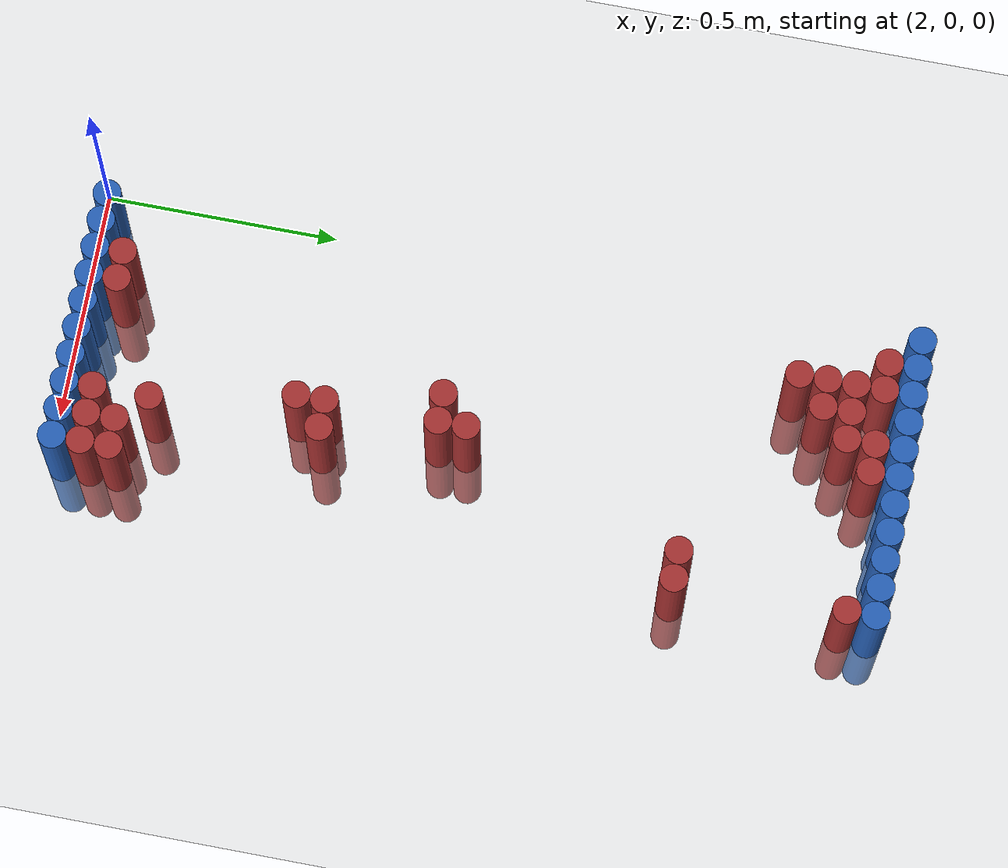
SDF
<sdf version="1.6">
 <world name="default">
  <model name="ground_plane">
   <static>1</static>
   <link name="link">
    <collision name="collision">
     <geometry><plane><normal>0 0 1</normal><size>100 100</size></plane></geometry>
     <surface><friction><ode><mu>100</mu><mu2>50</mu2></ode></friction></surface>
    </collision>
    <visual name="visual">
     <cast_shadows>0</cast_shadows>
     <geometry><plane><normal>0 0 1</normal><size>100 100</size></plane></geometry>
     <material>
      <script><uri>file://media/materials/scripts/gazebo.material</uri><name>Gazebo/Grey</name></script>
     </material>
    </visual>
   </link>
  </model>
  <model name="unit_cylinder_95">
   <static>1</static>
   <pose>2.070000 1.770000 0.000000 0.000000 0.000000 0.000000</pose>
   <link name="link">
    <inertial>
     <mass>1</mass>
     <inertia><ixx>0.145833</ixx><ixy>0</ixy><ixz>0</ixz><iyy>0.145833</iyy><iyz>0</iyz><izz>0.125</izz></inertia>
    </inertial>
    <collision name="collision">
     <geometry><cylinder><radius>0.030000</radius><length>0.5</length></cylinder></geometry>
    </collision>
    <visual name="visual">
     <geometry><cylinder><radius>0.030000</radius><length>0.5</length></cylinder></geometry>
     <material>
      <ambient>0.152000 0.379000 0.720000 1</ambient>
      <diffuse>0.152000 0.379000 0.720000 1</diffuse>
     </material>
     <material>
      <script><name>Gazebo/Grey</name><uri>file://media/materials/scripts/gazebo.material</uri></script>
     </material>
    </visual>
   </link>
  </model>
  <model name="unit_cylinder_96">
   <static>1</static>
   <pose>2.130000 1.770000 0.000000 0.000000 0.000000 0.000000</pose>
   <link name="link">
    <inertial>
     <mass>1</mass>
     <inertia><ixx>0.145833</ixx><ixy>0</ixy><ixz>0</ixz><iyy>0.145833</iyy><iyz>0</iyz><izz>0.125</izz></inertia>
    </inertial>
    <collision name="collision">
     <geometry><cylinder><radius>0.030000</radius><length>0.5</length></cylinder></geometry>
    </collision>
    <visual name="visual">
     <geometry><cylinder><radius>0.030000</radius><length>0.5</length></cylinder></geometry>
     <material>
      <ambient>0.152000 0.379000 0.720000 1</ambient>
      <diffuse>0.152000 0.379000 0.720000 1</diffuse>
     </material>
     <material>
      <script><name>Gazebo/Grey</name><uri>file://media/materials/scripts/gazebo.material</uri></script>
     </material>
    </visual>
   </link>
  </model>
  <model name="unit_cylinder_97">
   <static>1</static>
   <pose>2.190000 1.770000 0.000000 0.000000 0.000000 0.000000</pose>
   <link name="link">
    <inertial>
     <mass>1</mass>
     <inertia><ixx>0.145833</ixx><ixy>0</ixy><ixz>0</ixz><iyy>0.145833</iyy><iyz>0</iyz><izz>0.125</izz></inertia>
    </inertial>
    <collision name="collision">
     <geometry><cylinder><radius>0.030000</radius><length>0.5</length></cylinder></geometry>
    </collision>
    <visual name="visual">
     <geometry><cylinder><radius>0.030000</radius><length>0.5</length></cylinder></geometry>
     <material>
      <ambient>0.152000 0.379000 0.720000 1</ambient>
      <diffuse>0.152000 0.379000 0.720000 1</diffuse>
     </material>
     <material>
      <script><name>Gazebo/Grey</name><uri>file://media/materials/scripts/gazebo.material</uri></script>
     </material>
    </visual>
   </link>
  </model>
  <model name="unit_cylinder_98">
   <static>1</static>
   <pose>2.250000 1.770000 0.000000 0.000000 0.000000 0.000000</pose>
   <link name="link">
    <inertial>
     <mass>1</mass>
     <inertia><ixx>0.145833</ixx><ixy>0</ixy><ixz>0</ixz><iyy>0.145833</iyy><iyz>0</iyz><izz>0.125</izz></inertia>
    </inertial>
    <collision name="collision">
     <geometry><cylinder><radius>0.030000</radius><length>0.5</length></cylinder></geometry>
    </collision>
    <visual name="visual">
     <geometry><cylinder><radius>0.030000</radius><length>0.5</length></cylinder></geometry>
     <material>
      <ambient>0.152000 0.379000 0.720000 1</ambient>
      <diffuse>0.152000 0.379000 0.720000 1</diffuse>
     </material>
     <material>
      <script><name>Gazebo/Grey</name><uri>file://media/materials/scripts/gazebo.material</uri></script>
     </material>
    </visual>
   </link>
  </model>
  <model name="unit_cylinder_99">
   <static>1</static>
   <pose>2.310000 1.770000 0.000000 0.000000 0.000000 0.000000</pose>
   <link name="link">
    <inertial>
     <mass>1</mass>
     <inertia><ixx>0.145833</ixx><ixy>0</ixy><ixz>0</ixz><iyy>0.145833</iyy><iyz>0</iyz><izz>0.125</izz></inertia>
    </inertial>
    <collision name="collision">
     <geometry><cylinder><radius>0.030000</radius><length>0.5</length></cylinder></geometry>
    </collision>
    <visual name="visual">
     <geometry><cylinder><radius>0.030000</radius><length>0.5</length></cylinder></geometry>
     <material>
      <ambient>0.152000 0.379000 0.720000 1</ambient>
      <diffuse>0.152000 0.379000 0.720000 1</diffuse>
     </material>
     <material>
      <script><name>Gazebo/Grey</name><uri>file://media/materials/scripts/gazebo.material</uri></script>
     </material>
    </visual>
   </link>
  </model>
  <model name="unit_cylinder_100">
   <static>1</static>
   <pose>2.370000 1.770000 0.000000 0.000000 0.000000 0.000000</pose>
   <link name="link">
    <inertial>
     <mass>1</mass>
     <inertia><ixx>0.145833</ixx><ixy>0</ixy><ixz>0</ixz><iyy>0.145833</iyy><iyz>0</iyz><izz>0.125</izz></inertia>
    </inertial>
    <collision name="collision">
     <geometry><cylinder><radius>0.030000</radius><length>0.5</length></cylinder></geometry>
    </collision>
    <visual name="visual">
     <geometry><cylinder><radius>0.030000</radius><length>0.5</length></cylinder></geometry>
     <material>
      <ambient>0.152000 0.379000 0.720000 1</ambient>
      <diffuse>0.152000 0.379000 0.720000 1</diffuse>
     </material>
     <material>
      <script><name>Gazebo/Grey</name><uri>file://media/materials/scripts/gazebo.material</uri></script>
     </material>
    </visual>
   </link>
  </model>
  <model name="unit_cylinder_101">
   <static>1</static>
   <pose>2.430000 1.770000 0.000000 0.000000 0.000000 0.000000</pose>
   <link name="link">
    <inertial>
     <mass>1</mass>
     <inertia><ixx>0.145833</ixx><ixy>0</ixy><ixz>0</ixz><iyy>0.145833</iyy><iyz>0</iyz><izz>0.125</izz></inertia>
    </inertial>
    <collision name="collision">
     <geometry><cylinder><radius>0.030000</radius><length>0.5</length></cylinder></geometry>
    </collision>
    <visual name="visual">
     <geometry><cylinder><radius>0.030000</radius><length>0.5</length></cylinder></geometry>
     <material>
      <ambient>0.152000 0.379000 0.720000 1</ambient>
      <diffuse>0.152000 0.379000 0.720000 1</diffuse>
     </material>
     <material>
      <script><name>Gazebo/Grey</name><uri>file://media/materials/scripts/gazebo.material</uri></script>
     </material>
    </visual>
   </link>
  </model>
  <model name="unit_cylinder_102">
   <static>1</static>
   <pose>2.490000 1.770000 0.000000 0.000000 0.000000 0.000000</pose>
   <link name="link">
    <inertial>
     <mass>1</mass>
     <inertia><ixx>0.145833</ixx><ixy>0</ixy><ixz>0</ixz><iyy>0.145833</iyy><iyz>0</iyz><izz>0.125</izz></inertia>
    </inertial>
    <collision name="collision">
     <geometry><cylinder><radius>0.030000</radius><length>0.5</length></cylinder></geometry>
    </collision>
    <visual name="visual">
     <geometry><cylinder><radius>0.030000</radius><length>0.5</length></cylinder></geometry>
     <material>
      <ambient>0.152000 0.379000 0.720000 1</ambient>
      <diffuse>0.152000 0.379000 0.720000 1</diffuse>
     </material>
     <material>
      <script><name>Gazebo/Grey</name><uri>file://media/materials/scripts/gazebo.material</uri></script>
     </material>
    </visual>
   </link>
  </model>
  <model name="unit_cylinder_103">
   <static>1</static>
   <pose>2.550000 1.770000 0.000000 0.000000 0.000000 0.000000</pose>
   <link name="link">
    <inertial>
     <mass>1</mass>
     <inertia><ixx>0.145833</ixx><ixy>0</ixy><ixz>0</ixz><iyy>0.145833</iyy><iyz>0</iyz><izz>0.125</izz></inertia>
    </inertial>
    <collision name="collision">
     <geometry><cylinder><radius>0.030000</radius><length>0.5</length></cylinder></geometry>
    </collision>
    <visual name="visual">
     <geometry><cylinder><radius>0.030000</radius><length>0.5</length></cylinder></geometry>
     <material>
      <ambient>0.152000 0.379000 0.720000 1</ambient>
      <diffuse>0.152000 0.379000 0.720000 1</diffuse>
     </material>
     <material>
      <script><name>Gazebo/Grey</name><uri>file://media/materials/scripts/gazebo.material</uri></script>
     </material>
    </visual>
   </link>
  </model>
  <model name="unit_cylinder_104">
   <static>1</static>
   <pose>2.610000 1.770000 0.000000 0.000000 0.000000 0.000000</pose>
   <link name="link">
    <inertial>
     <mass>1</mass>
     <inertia><ixx>0.145833</ixx><ixy>0</ixy><ixz>0</ixz><iyy>0.145833</iyy><iyz>0</iyz><izz>0.125</izz></inertia>
    </inertial>
    <collision name="collision">
     <geometry><cylinder><radius>0.030000</radius><length>0.5</length></cylinder></geometry>
    </collision>
    <visual name="visual">
     <geometry><cylinder><radius>0.030000</radius><length>0.5</length></cylinder></geometry>
     <material>
      <ambient>0.152000 0.379000 0.720000 1</ambient>
      <diffuse>0.152000 0.379000 0.720000 1</diffuse>
     </material>
     <material>
      <script><name>Gazebo/Grey</name><uri>file://media/materials/scripts/gazebo.material</uri></script>
     </material>
    </visual>
   </link>
  </model>
  <model name="unit_cylinder_105">
   <static>1</static>
   <pose>2.670000 1.770000 0.000000 0.000000 0.000000 0.000000</pose>
   <link name="link">
    <inertial>
     <mass>1</mass>
     <inertia><ixx>0.145833</ixx><ixy>0</ixy><ixz>0</ixz><iyy>0.145833</iyy><iyz>0</iyz><izz>0.125</izz></inertia>
    </inertial>
    <collision name="collision">
     <geometry><cylinder><radius>0.030000</radius><length>0.5</length></cylinder></geometry>
    </collision>
    <visual name="visual">
     <geometry><cylinder><radius>0.030000</radius><length>0.5</length></cylinder></geometry>
     <material>
      <ambient>0.152000 0.379000 0.720000 1</ambient>
      <diffuse>0.152000 0.379000 0.720000 1</diffuse>
     </material>
     <material>
      <script><name>Gazebo/Grey</name><uri>file://media/materials/scripts/gazebo.material</uri></script>
     </material>
    </visual>
   </link>
  </model>
  <model name="unit_cylinder_125">
   <static>1</static>
   <pose>2.130000 1.710000 0.000000 0.000000 0.000000 0.000000</pose>
   <link name="link">
    <inertial>
     <mass>1</mass>
     <inertia><ixx>0.145833</ixx><ixy>0</ixy><ixz>0</ixz><iyy>0.145833</iyy><iyz>0</iyz><izz>0.125</izz></inertia>
    </inertial>
    <collision name="collision">
     <geometry><cylinder><radius>0.030000</radius><length>0.5</length></cylinder></geometry>
    </collision>
    <visual name="visual">
     <geometry><cylinder><radius>0.030000</radius><length>0.5</length></cylinder></geometry>
     <material>
      <ambient>0.648000 0.192000 0.192000 1</ambient>
      <diffuse>0.648000 0.192000 0.192000 1</diffuse>
     </material>
     <material>
      <script><name>Gazebo/Grey</name><uri>file://media/materials/scripts/gazebo.material</uri></script>
     </material>
    </visual>
   </link>
  </model>
  <model name="unit_cylinder_126">
   <static>1</static>
   <pose>2.190000 1.710000 0.000000 0.000000 0.000000 0.000000</pose>
   <link name="link">
    <inertial>
     <mass>1</mass>
     <inertia><ixx>0.145833</ixx><ixy>0</ixy><ixz>0</ixz><iyy>0.145833</iyy><iyz>0</iyz><izz>0.125</izz></inertia>
    </inertial>
    <collision name="collision">
     <geometry><cylinder><radius>0.030000</radius><length>0.5</length></cylinder></geometry>
    </collision>
    <visual name="visual">
     <geometry><cylinder><radius>0.030000</radius><length>0.5</length></cylinder></geometry>
     <material>
      <ambient>0.648000 0.192000 0.192000 1</ambient>
      <diffuse>0.648000 0.192000 0.192000 1</diffuse>
     </material>
     <material>
      <script><name>Gazebo/Grey</name><uri>file://media/materials/scripts/gazebo.material</uri></script>
     </material>
    </visual>
   </link>
  </model>
  <model name="unit_cylinder_127">
   <static>1</static>
   <pose>2.310000 1.710000 0.000000 0.000000 0.000000 0.000000</pose>
   <link name="link">
    <inertial>
     <mass>1</mass>
     <inertia><ixx>0.145833</ixx><ixy>0</ixy><ixz>0</ixz><iyy>0.145833</iyy><iyz>0</iyz><izz>0.125</izz></inertia>
    </inertial>
    <collision name="collision">
     <geometry><cylinder><radius>0.030000</radius><length>0.5</length></cylinder></geometry>
    </collision>
    <visual name="visual">
     <geometry><cylinder><radius>0.030000</radius><length>0.5</length></cylinder></geometry>
     <material>
      <ambient>0.648000 0.192000 0.192000 1</ambient>
      <diffuse>0.648000 0.192000 0.192000 1</diffuse>
     </material>
     <material>
      <script><name>Gazebo/Grey</name><uri>file://media/materials/scripts/gazebo.material</uri></script>
     </material>
    </visual>
   </link>
  </model>
  <model name="unit_cylinder_128">
   <static>1</static>
   <pose>2.370000 1.710000 0.000000 0.000000 0.000000 0.000000</pose>
   <link name="link">
    <inertial>
     <mass>1</mass>
     <inertia><ixx>0.145833</ixx><ixy>0</ixy><ixz>0</ixz><iyy>0.145833</iyy><iyz>0</iyz><izz>0.125</izz></inertia>
    </inertial>
    <collision name="collision">
     <geometry><cylinder><radius>0.030000</radius><length>0.5</length></cylinder></geometry>
    </collision>
    <visual name="visual">
     <geometry><cylinder><radius>0.030000</radius><length>0.5</length></cylinder></geometry>
     <material>
      <ambient>0.648000 0.192000 0.192000 1</ambient>
      <diffuse>0.648000 0.192000 0.192000 1</diffuse>
     </material>
     <material>
      <script><name>Gazebo/Grey</name><uri>file://media/materials/scripts/gazebo.material</uri></script>
     </material>
    </visual>
   </link>
  </model>
  <model name="unit_cylinder_129">
   <static>1</static>
   <pose>2.670000 1.710000 0.000000 0.000000 0.000000 0.000000</pose>
   <link name="link">
    <inertial>
     <mass>1</mass>
     <inertia><ixx>0.145833</ixx><ixy>0</ixy><ixz>0</ixz><iyy>0.145833</iyy><iyz>0</iyz><izz>0.125</izz></inertia>
    </inertial>
    <collision name="collision">
     <geometry><cylinder><radius>0.030000</radius><length>0.5</length></cylinder></geometry>
    </collision>
    <visual name="visual">
     <geometry><cylinder><radius>0.030000</radius><length>0.5</length></cylinder></geometry>
     <material>
      <ambient>0.648000 0.192000 0.192000 1</ambient>
      <diffuse>0.648000 0.192000 0.192000 1</diffuse>
     </material>
     <material>
      <script><name>Gazebo/Grey</name><uri>file://media/materials/scripts/gazebo.material</uri></script>
     </material>
    </visual>
   </link>
  </model>
  <model name="unit_cylinder_138">
   <static>1</static>
   <pose>2.190000 1.650000 0.000000 0.000000 0.000000 0.000000</pose>
   <link name="link">
    <inertial>
     <mass>1</mass>
     <inertia><ixx>0.145833</ixx><ixy>0</ixy><ixz>0</ixz><iyy>0.145833</iyy><iyz>0</iyz><izz>0.125</izz></inertia>
    </inertial>
    <collision name="collision">
     <geometry><cylinder><radius>0.030000</radius><length>0.5</length></cylinder></geometry>
    </collision>
    <visual name="visual">
     <geometry><cylinder><radius>0.030000</radius><length>0.5</length></cylinder></geometry>
     <material>
      <ambient>0.648000 0.192000 0.192000 1</ambient>
      <diffuse>0.648000 0.192000 0.192000 1</diffuse>
     </material>
     <material>
      <script><name>Gazebo/Grey</name><uri>file://media/materials/scripts/gazebo.material</uri></script>
     </material>
    </visual>
   </link>
  </model>
  <model name="unit_cylinder_139">
   <static>1</static>
   <pose>2.250000 1.650000 0.000000 0.000000 0.000000 0.000000</pose>
   <link name="link">
    <inertial>
     <mass>1</mass>
     <inertia><ixx>0.145833</ixx><ixy>0</ixy><ixz>0</ixz><iyy>0.145833</iyy><iyz>0</iyz><izz>0.125</izz></inertia>
    </inertial>
    <collision name="collision">
     <geometry><cylinder><radius>0.030000</radius><length>0.5</length></cylinder></geometry>
    </collision>
    <visual name="visual">
     <geometry><cylinder><radius>0.030000</radius><length>0.5</length></cylinder></geometry>
     <material>
      <ambient>0.648000 0.192000 0.192000 1</ambient>
      <diffuse>0.648000 0.192000 0.192000 1</diffuse>
     </material>
     <material>
      <script><name>Gazebo/Grey</name><uri>file://media/materials/scripts/gazebo.material</uri></script>
     </material>
    </visual>
   </link>
  </model>
  <model name="unit_cylinder_140">
   <static>1</static>
   <pose>2.310000 1.650000 0.000000 0.000000 0.000000 0.000000</pose>
   <link name="link">
    <inertial>
     <mass>1</mass>
     <inertia><ixx>0.145833</ixx><ixy>0</ixy><ixz>0</ixz><iyy>0.145833</iyy><iyz>0</iyz><izz>0.125</izz></inertia>
    </inertial>
    <collision name="collision">
     <geometry><cylinder><radius>0.030000</radius><length>0.5</length></cylinder></geometry>
    </collision>
    <visual name="visual">
     <geometry><cylinder><radius>0.030000</radius><length>0.5</length></cylinder></geometry>
     <material>
      <ambient>0.648000 0.192000 0.192000 1</ambient>
      <diffuse>0.648000 0.192000 0.192000 1</diffuse>
     </material>
     <material>
      <script><name>Gazebo/Grey</name><uri>file://media/materials/scripts/gazebo.material</uri></script>
     </material>
    </visual>
   </link>
  </model>
  <model name="unit_cylinder_146">
   <static>1</static>
   <pose>2.190000 1.590000 0.000000 0.000000 0.000000 0.000000</pose>
   <link name="link">
    <inertial>
     <mass>1</mass>
     <inertia><ixx>0.145833</ixx><ixy>0</ixy><ixz>0</ixz><iyy>0.145833</iyy><iyz>0</iyz><izz>0.125</izz></inertia>
    </inertial>
    <collision name="collision">
     <geometry><cylinder><radius>0.030000</radius><length>0.5</length></cylinder></geometry>
    </collision>
    <visual name="visual">
     <geometry><cylinder><radius>0.030000</radius><length>0.5</length></cylinder></geometry>
     <material>
      <ambient>0.648000 0.192000 0.192000 1</ambient>
      <diffuse>0.648000 0.192000 0.192000 1</diffuse>
     </material>
     <material>
      <script><name>Gazebo/Grey</name><uri>file://media/materials/scripts/gazebo.material</uri></script>
     </material>
    </visual>
   </link>
  </model>
  <model name="unit_cylinder_147">
   <static>1</static>
   <pose>2.250000 1.590000 0.000000 0.000000 0.000000 0.000000</pose>
   <link name="link">
    <inertial>
     <mass>1</mass>
     <inertia><ixx>0.145833</ixx><ixy>0</ixy><ixz>0</ixz><iyy>0.145833</iyy><iyz>0</iyz><izz>0.125</izz></inertia>
    </inertial>
    <collision name="collision">
     <geometry><cylinder><radius>0.030000</radius><length>0.5</length></cylinder></geometry>
    </collision>
    <visual name="visual">
     <geometry><cylinder><radius>0.030000</radius><length>0.5</length></cylinder></geometry>
     <material>
      <ambient>0.648000 0.192000 0.192000 1</ambient>
      <diffuse>0.648000 0.192000 0.192000 1</diffuse>
     </material>
     <material>
      <script><name>Gazebo/Grey</name><uri>file://media/materials/scripts/gazebo.material</uri></script>
     </material>
    </visual>
   </link>
  </model>
  <model name="unit_cylinder_148">
   <static>1</static>
   <pose>2.190000 1.530000 0.000000 0.000000 0.000000 0.000000</pose>
   <link name="link">
    <inertial>
     <mass>1</mass>
     <inertia><ixx>0.145833</ixx><ixy>0</ixy><ixz>0</ixz><iyy>0.145833</iyy><iyz>0</iyz><izz>0.125</izz></inertia>
    </inertial>
    <collision name="collision">
     <geometry><cylinder><radius>0.030000</radius><length>0.5</length></cylinder></geometry>
    </collision>
    <visual name="visual">
     <geometry><cylinder><radius>0.030000</radius><length>0.5</length></cylinder></geometry>
     <material>
      <ambient>0.648000 0.192000 0.192000 1</ambient>
      <diffuse>0.648000 0.192000 0.192000 1</diffuse>
     </material>
     <material>
      <script><name>Gazebo/Grey</name><uri>file://media/materials/scripts/gazebo.material</uri></script>
     </material>
    </visual>
   </link>
  </model>
  <model name="unit_cylinder_155">
   <static>1</static>
   <pose>2.610000 1.350000 0.000000 0.000000 0.000000 0.000000</pose>
   <link name="link">
    <inertial>
     <mass>1</mass>
     <inertia><ixx>0.145833</ixx><ixy>0</ixy><ixz>0</ixz><iyy>0.145833</iyy><iyz>0</iyz><izz>0.125</izz></inertia>
    </inertial>
    <collision name="collision">
     <geometry><cylinder><radius>0.030000</radius><length>0.5</length></cylinder></geometry>
    </collision>
    <visual name="visual">
     <geometry><cylinder><radius>0.030000</radius><length>0.5</length></cylinder></geometry>
     <material>
      <ambient>0.648000 0.192000 0.192000 1</ambient>
      <diffuse>0.648000 0.192000 0.192000 1</diffuse>
     </material>
     <material>
      <script><name>Gazebo/Grey</name><uri>file://media/materials/scripts/gazebo.material</uri></script>
     </material>
    </visual>
   </link>
  </model>
  <model name="unit_cylinder_156">
   <static>1</static>
   <pose>2.670000 1.350000 0.000000 0.000000 0.000000 0.000000</pose>
   <link name="link">
    <inertial>
     <mass>1</mass>
     <inertia><ixx>0.145833</ixx><ixy>0</ixy><ixz>0</ixz><iyy>0.145833</iyy><iyz>0</iyz><izz>0.125</izz></inertia>
    </inertial>
    <collision name="collision">
     <geometry><cylinder><radius>0.030000</radius><length>0.5</length></cylinder></geometry>
    </collision>
    <visual name="visual">
     <geometry><cylinder><radius>0.030000</radius><length>0.5</length></cylinder></geometry>
     <material>
      <ambient>0.648000 0.192000 0.192000 1</ambient>
      <diffuse>0.648000 0.192000 0.192000 1</diffuse>
     </material>
     <material>
      <script><name>Gazebo/Grey</name><uri>file://media/materials/scripts/gazebo.material</uri></script>
     </material>
    </visual>
   </link>
  </model>
  <model name="unit_cylinder_175">
   <static>1</static>
   <pose>2.430000 0.870000 0.000000 0.000000 0.000000 0.000000</pose>
   <link name="link">
    <inertial>
     <mass>1</mass>
     <inertia><ixx>0.145833</ixx><ixy>0</ixy><ixz>0</ixz><iyy>0.145833</iyy><iyz>0</iyz><izz>0.125</izz></inertia>
    </inertial>
    <collision name="collision">
     <geometry><cylinder><radius>0.030000</radius><length>0.5</length></cylinder></geometry>
    </collision>
    <visual name="visual">
     <geometry><cylinder><radius>0.030000</radius><length>0.5</length></cylinder></geometry>
     <material>
      <ambient>0.648000 0.192000 0.192000 1</ambient>
      <diffuse>0.648000 0.192000 0.192000 1</diffuse>
     </material>
     <material>
      <script><name>Gazebo/Grey</name><uri>file://media/materials/scripts/gazebo.material</uri></script>
     </material>
    </visual>
   </link>
  </model>
  <model name="unit_cylinder_178">
   <static>1</static>
   <pose>2.370000 0.810000 0.000000 0.000000 0.000000 0.000000</pose>
   <link name="link">
    <inertial>
     <mass>1</mass>
     <inertia><ixx>0.145833</ixx><ixy>0</ixy><ixz>0</ixz><iyy>0.145833</iyy><iyz>0</iyz><izz>0.125</izz></inertia>
    </inertial>
    <collision name="collision">
     <geometry><cylinder><radius>0.030000</radius><length>0.5</length></cylinder></geometry>
    </collision>
    <visual name="visual">
     <geometry><cylinder><radius>0.030000</radius><length>0.5</length></cylinder></geometry>
     <material>
      <ambient>0.648000 0.192000 0.192000 1</ambient>
      <diffuse>0.648000 0.192000 0.192000 1</diffuse>
     </material>
     <material>
      <script><name>Gazebo/Grey</name><uri>file://media/materials/scripts/gazebo.material</uri></script>
     </material>
    </visual>
   </link>
  </model>
  <model name="unit_cylinder_179">
   <static>1</static>
   <pose>2.430000 0.810000 0.000000 0.000000 0.000000 0.000000</pose>
   <link name="link">
    <inertial>
     <mass>1</mass>
     <inertia><ixx>0.145833</ixx><ixy>0</ixy><ixz>0</ixz><iyy>0.145833</iyy><iyz>0</iyz><izz>0.125</izz></inertia>
    </inertial>
    <collision name="collision">
     <geometry><cylinder><radius>0.030000</radius><length>0.5</length></cylinder></geometry>
    </collision>
    <visual name="visual">
     <geometry><cylinder><radius>0.030000</radius><length>0.5</length></cylinder></geometry>
     <material>
      <ambient>0.648000 0.192000 0.192000 1</ambient>
      <diffuse>0.648000 0.192000 0.192000 1</diffuse>
     </material>
     <material>
      <script><name>Gazebo/Grey</name><uri>file://media/materials/scripts/gazebo.material</uri></script>
     </material>
    </visual>
   </link>
  </model>
  <model name="unit_cylinder_181">
   <static>1</static>
   <pose>2.430000 0.570000 0.000000 0.000000 0.000000 0.000000</pose>
   <link name="link">
    <inertial>
     <mass>1</mass>
     <inertia><ixx>0.145833</ixx><ixy>0</ixy><ixz>0</ixz><iyy>0.145833</iyy><iyz>0</iyz><izz>0.125</izz></inertia>
    </inertial>
    <collision name="collision">
     <geometry><cylinder><radius>0.030000</radius><length>0.5</length></cylinder></geometry>
    </collision>
    <visual name="visual">
     <geometry><cylinder><radius>0.030000</radius><length>0.5</length></cylinder></geometry>
     <material>
      <ambient>0.648000 0.192000 0.192000 1</ambient>
      <diffuse>0.648000 0.192000 0.192000 1</diffuse>
     </material>
     <material>
      <script><name>Gazebo/Grey</name><uri>file://media/materials/scripts/gazebo.material</uri></script>
     </material>
    </visual>
   </link>
  </model>
  <model name="unit_cylinder_182">
   <static>1</static>
   <pose>2.490000 0.570000 0.000000 0.000000 0.000000 0.000000</pose>
   <link name="link">
    <inertial>
     <mass>1</mass>
     <inertia><ixx>0.145833</ixx><ixy>0</ixy><ixz>0</ixz><iyy>0.145833</iyy><iyz>0</iyz><izz>0.125</izz></inertia>
    </inertial>
    <collision name="collision">
     <geometry><cylinder><radius>0.030000</radius><length>0.5</length></cylinder></geometry>
    </collision>
    <visual name="visual">
     <geometry><cylinder><radius>0.030000</radius><length>0.5</length></cylinder></geometry>
     <material>
      <ambient>0.648000 0.192000 0.192000 1</ambient>
      <diffuse>0.648000 0.192000 0.192000 1</diffuse>
     </material>
     <material>
      <script><name>Gazebo/Grey</name><uri>file://media/materials/scripts/gazebo.material</uri></script>
     </material>
    </visual>
   </link>
  </model>
  <model name="unit_cylinder_183">
   <static>1</static>
   <pose>2.430000 0.510000 0.000000 0.000000 0.000000 0.000000</pose>
   <link name="link">
    <inertial>
     <mass>1</mass>
     <inertia><ixx>0.145833</ixx><ixy>0</ixy><ixz>0</ixz><iyy>0.145833</iyy><iyz>0</iyz><izz>0.125</izz></inertia>
    </inertial>
    <collision name="collision">
     <geometry><cylinder><radius>0.030000</radius><length>0.5</length></cylinder></geometry>
    </collision>
    <visual name="visual">
     <geometry><cylinder><radius>0.030000</radius><length>0.5</length></cylinder></geometry>
     <material>
      <ambient>0.648000 0.192000 0.192000 1</ambient>
      <diffuse>0.648000 0.192000 0.192000 1</diffuse>
     </material>
     <material>
      <script><name>Gazebo/Grey</name><uri>file://media/materials/scripts/gazebo.material</uri></script>
     </material>
    </visual>
   </link>
  </model>
  <model name="unit_cylinder_188">
   <static>1</static>
   <pose>2.490000 0.210000 0.000000 0.000000 0.000000 0.000000</pose>
   <link name="link">
    <inertial>
     <mass>1</mass>
     <inertia><ixx>0.145833</ixx><ixy>0</ixy><ixz>0</ixz><iyy>0.145833</iyy><iyz>0</iyz><izz>0.125</izz></inertia>
    </inertial>
    <collision name="collision">
     <geometry><cylinder><radius>0.030000</radius><length>0.5</length></cylinder></geometry>
    </collision>
    <visual name="visual">
     <geometry><cylinder><radius>0.030000</radius><length>0.5</length></cylinder></geometry>
     <material>
      <ambient>0.648000 0.192000 0.192000 1</ambient>
      <diffuse>0.648000 0.192000 0.192000 1</diffuse>
     </material>
     <material>
      <script><name>Gazebo/Grey</name><uri>file://media/materials/scripts/gazebo.material</uri></script>
     </material>
    </visual>
   </link>
  </model>
  <model name="unit_cylinder_191">
   <static>1</static>
   <pose>2.550000 0.150000 0.000000 0.000000 0.000000 0.000000</pose>
   <link name="link">
    <inertial>
     <mass>1</mass>
     <inertia><ixx>0.145833</ixx><ixy>0</ixy><ixz>0</ixz><iyy>0.145833</iyy><iyz>0</iyz><izz>0.125</izz></inertia>
    </inertial>
    <collision name="collision">
     <geometry><cylinder><radius>0.030000</radius><length>0.5</length></cylinder></geometry>
    </collision>
    <visual name="visual">
     <geometry><cylinder><radius>0.030000</radius><length>0.5</length></cylinder></geometry>
     <material>
      <ambient>0.648000 0.192000 0.192000 1</ambient>
      <diffuse>0.648000 0.192000 0.192000 1</diffuse>
     </material>
     <material>
      <script><name>Gazebo/Grey</name><uri>file://media/materials/scripts/gazebo.material</uri></script>
     </material>
    </visual>
   </link>
  </model>
  <model name="unit_cylinder_192">
   <static>1</static>
   <pose>2.610000 0.150000 0.000000 0.000000 0.000000 0.000000</pose>
   <link name="link">
    <inertial>
     <mass>1</mass>
     <inertia><ixx>0.145833</ixx><ixy>0</ixy><ixz>0</ixz><iyy>0.145833</iyy><iyz>0</iyz><izz>0.125</izz></inertia>
    </inertial>
    <collision name="collision">
     <geometry><cylinder><radius>0.030000</radius><length>0.5</length></cylinder></geometry>
    </collision>
    <visual name="visual">
     <geometry><cylinder><radius>0.030000</radius><length>0.5</length></cylinder></geometry>
     <material>
      <ambient>0.648000 0.192000 0.192000 1</ambient>
      <diffuse>0.648000 0.192000 0.192000 1</diffuse>
     </material>
     <material>
      <script><name>Gazebo/Grey</name><uri>file://media/materials/scripts/gazebo.material</uri></script>
     </material>
    </visual>
   </link>
  </model>
  <model name="unit_cylinder_197">
   <static>1</static>
   <pose>2.190000 0.090000 0.000000 0.000000 0.000000 0.000000</pose>
   <link name="link">
    <inertial>
     <mass>1</mass>
     <inertia><ixx>0.145833</ixx><ixy>0</ixy><ixz>0</ixz><iyy>0.145833</iyy><iyz>0</iyz><izz>0.125</izz></inertia>
    </inertial>
    <collision name="collision">
     <geometry><cylinder><radius>0.030000</radius><length>0.5</length></cylinder></geometry>
    </collision>
    <visual name="visual">
     <geometry><cylinder><radius>0.030000</radius><length>0.5</length></cylinder></geometry>
     <material>
      <ambient>0.648000 0.192000 0.192000 1</ambient>
      <diffuse>0.648000 0.192000 0.192000 1</diffuse>
     </material>
     <material>
      <script><name>Gazebo/Grey</name><uri>file://media/materials/scripts/gazebo.material</uri></script>
     </material>
    </visual>
   </link>
  </model>
  <model name="unit_cylinder_198">
   <static>1</static>
   <pose>2.250000 0.090000 0.000000 0.000000 0.000000 0.000000</pose>
   <link name="link">
    <inertial>
     <mass>1</mass>
     <inertia><ixx>0.145833</ixx><ixy>0</ixy><ixz>0</ixz><iyy>0.145833</iyy><iyz>0</iyz><izz>0.125</izz></inertia>
    </inertial>
    <collision name="collision">
     <geometry><cylinder><radius>0.030000</radius><length>0.5</length></cylinder></geometry>
    </collision>
    <visual name="visual">
     <geometry><cylinder><radius>0.030000</radius><length>0.5</length></cylinder></geometry>
     <material>
      <ambient>0.648000 0.192000 0.192000 1</ambient>
      <diffuse>0.648000 0.192000 0.192000 1</diffuse>
     </material>
     <material>
      <script><name>Gazebo/Grey</name><uri>file://media/materials/scripts/gazebo.material</uri></script>
     </material>
    </visual>
   </link>
  </model>
  <model name="unit_cylinder_199">
   <static>1</static>
   <pose>2.490000 0.090000 0.000000 0.000000 0.000000 0.000000</pose>
   <link name="link">
    <inertial>
     <mass>1</mass>
     <inertia><ixx>0.145833</ixx><ixy>0</ixy><ixz>0</ixz><iyy>0.145833</iyy><iyz>0</iyz><izz>0.125</izz></inertia>
    </inertial>
    <collision name="collision">
     <geometry><cylinder><radius>0.030000</radius><length>0.5</length></cylinder></geometry>
    </collision>
    <visual name="visual">
     <geometry><cylinder><radius>0.030000</radius><length>0.5</length></cylinder></geometry>
     <material>
      <ambient>0.648000 0.192000 0.192000 1</ambient>
      <diffuse>0.648000 0.192000 0.192000 1</diffuse>
     </material>
     <material>
      <script><name>Gazebo/Grey</name><uri>file://media/materials/scripts/gazebo.material</uri></script>
     </material>
    </visual>
   </link>
  </model>
  <model name="unit_cylinder_200">
   <static>1</static>
   <pose>2.550000 0.090000 0.000000 0.000000 0.000000 0.000000</pose>
   <link name="link">
    <inertial>
     <mass>1</mass>
     <inertia><ixx>0.145833</ixx><ixy>0</ixy><ixz>0</ixz><iyy>0.145833</iyy><iyz>0</iyz><izz>0.125</izz></inertia>
    </inertial>
    <collision name="collision">
     <geometry><cylinder><radius>0.030000</radius><length>0.5</length></cylinder></geometry>
    </collision>
    <visual name="visual">
     <geometry><cylinder><radius>0.030000</radius><length>0.5</length></cylinder></geometry>
     <material>
      <ambient>0.648000 0.192000 0.192000 1</ambient>
      <diffuse>0.648000 0.192000 0.192000 1</diffuse>
     </material>
     <material>
      <script><name>Gazebo/Grey</name><uri>file://media/materials/scripts/gazebo.material</uri></script>
     </material>
    </visual>
   </link>
  </model>
  <model name="unit_cylinder_201">
   <static>1</static>
   <pose>2.610000 0.090000 0.000000 0.000000 0.000000 0.000000</pose>
   <link name="link">
    <inertial>
     <mass>1</mass>
     <inertia><ixx>0.145833</ixx><ixy>0</ixy><ixz>0</ixz><iyy>0.145833</iyy><iyz>0</iyz><izz>0.125</izz></inertia>
    </inertial>
    <collision name="collision">
     <geometry><cylinder><radius>0.030000</radius><length>0.5</length></cylinder></geometry>
    </collision>
    <visual name="visual">
     <geometry><cylinder><radius>0.030000</radius><length>0.5</length></cylinder></geometry>
     <material>
      <ambient>0.648000 0.192000 0.192000 1</ambient>
      <diffuse>0.648000 0.192000 0.192000 1</diffuse>
     </material>
     <material>
      <script><name>Gazebo/Grey</name><uri>file://media/materials/scripts/gazebo.material</uri></script>
     </material>
    </visual>
   </link>
  </model>
  <model name="unit_cylinder_208">
   <static>1</static>
   <pose>2.070000 0.030000 0.000000 0.000000 0.000000 0.000000</pose>
   <link name="link">
    <inertial>
     <mass>1</mass>
     <inertia><ixx>0.145833</ixx><ixy>0</ixy><ixz>0</ixz><iyy>0.145833</iyy><iyz>0</iyz><izz>0.125</izz></inertia>
    </inertial>
    <collision name="collision">
     <geometry><cylinder><radius>0.030000</radius><length>0.5</length></cylinder></geometry>
    </collision>
    <visual name="visual">
     <geometry><cylinder><radius>0.030000</radius><length>0.5</length></cylinder></geometry>
     <material>
      <ambient>0.152000 0.379000 0.720000 1</ambient>
      <diffuse>0.152000 0.379000 0.720000 1</diffuse>
     </material>
     <material>
      <script><name>Gazebo/Grey</name><uri>file://media/materials/scripts/gazebo.material</uri></script>
     </material>
    </visual>
   </link>
  </model>
  <model name="unit_cylinder_209">
   <static>1</static>
   <pose>2.130000 0.030000 0.000000 0.000000 0.000000 0.000000</pose>
   <link name="link">
    <inertial>
     <mass>1</mass>
     <inertia><ixx>0.145833</ixx><ixy>0</ixy><ixz>0</ixz><iyy>0.145833</iyy><iyz>0</iyz><izz>0.125</izz></inertia>
    </inertial>
    <collision name="collision">
     <geometry><cylinder><radius>0.030000</radius><length>0.5</length></cylinder></geometry>
    </collision>
    <visual name="visual">
     <geometry><cylinder><radius>0.030000</radius><length>0.5</length></cylinder></geometry>
     <material>
      <ambient>0.152000 0.379000 0.720000 1</ambient>
      <diffuse>0.152000 0.379000 0.720000 1</diffuse>
     </material>
     <material>
      <script><name>Gazebo/Grey</name><uri>file://media/materials/scripts/gazebo.material</uri></script>
     </material>
    </visual>
   </link>
  </model>
  <model name="unit_cylinder_210">
   <static>1</static>
   <pose>2.190000 0.030000 0.000000 0.000000 0.000000 0.000000</pose>
   <link name="link">
    <inertial>
     <mass>1</mass>
     <inertia><ixx>0.145833</ixx><ixy>0</ixy><ixz>0</ixz><iyy>0.145833</iyy><iyz>0</iyz><izz>0.125</izz></inertia>
    </inertial>
    <collision name="collision">
     <geometry><cylinder><radius>0.030000</radius><length>0.5</length></cylinder></geometry>
    </collision>
    <visual name="visual">
     <geometry><cylinder><radius>0.030000</radius><length>0.5</length></cylinder></geometry>
     <material>
      <ambient>0.152000 0.379000 0.720000 1</ambient>
      <diffuse>0.152000 0.379000 0.720000 1</diffuse>
     </material>
     <material>
      <script><name>Gazebo/Grey</name><uri>file://media/materials/scripts/gazebo.material</uri></script>
     </material>
    </visual>
   </link>
  </model>
  <model name="unit_cylinder_211">
   <static>1</static>
   <pose>2.250000 0.030000 0.000000 0.000000 0.000000 0.000000</pose>
   <link name="link">
    <inertial>
     <mass>1</mass>
     <inertia><ixx>0.145833</ixx><ixy>0</ixy><ixz>0</ixz><iyy>0.145833</iyy><iyz>0</iyz><izz>0.125</izz></inertia>
    </inertial>
    <collision name="collision">
     <geometry><cylinder><radius>0.030000</radius><length>0.5</length></cylinder></geometry>
    </collision>
    <visual name="visual">
     <geometry><cylinder><radius>0.030000</radius><length>0.5</length></cylinder></geometry>
     <material>
      <ambient>0.152000 0.379000 0.720000 1</ambient>
      <diffuse>0.152000 0.379000 0.720000 1</diffuse>
     </material>
     <material>
      <script><name>Gazebo/Grey</name><uri>file://media/materials/scripts/gazebo.material</uri></script>
     </material>
    </visual>
   </link>
  </model>
  <model name="unit_cylinder_212">
   <static>1</static>
   <pose>2.310000 0.030000 0.000000 0.000000 0.000000 0.000000</pose>
   <link name="link">
    <inertial>
     <mass>1</mass>
     <inertia><ixx>0.145833</ixx><ixy>0</ixy><ixz>0</ixz><iyy>0.145833</iyy><iyz>0</iyz><izz>0.125</izz></inertia>
    </inertial>
    <collision name="collision">
     <geometry><cylinder><radius>0.030000</radius><length>0.5</length></cylinder></geometry>
    </collision>
    <visual name="visual">
     <geometry><cylinder><radius>0.030000</radius><length>0.5</length></cylinder></geometry>
     <material>
      <ambient>0.152000 0.379000 0.720000 1</ambient>
      <diffuse>0.152000 0.379000 0.720000 1</diffuse>
     </material>
     <material>
      <script><name>Gazebo/Grey</name><uri>file://media/materials/scripts/gazebo.material</uri></script>
     </material>
    </visual>
   </link>
  </model>
  <model name="unit_cylinder_213">
   <static>1</static>
   <pose>2.370000 0.030000 0.000000 0.000000 0.000000 0.000000</pose>
   <link name="link">
    <inertial>
     <mass>1</mass>
     <inertia><ixx>0.145833</ixx><ixy>0</ixy><ixz>0</ixz><iyy>0.145833</iyy><iyz>0</iyz><izz>0.125</izz></inertia>
    </inertial>
    <collision name="collision">
     <geometry><cylinder><radius>0.030000</radius><length>0.5</length></cylinder></geometry>
    </collision>
    <visual name="visual">
     <geometry><cylinder><radius>0.030000</radius><length>0.5</length></cylinder></geometry>
     <material>
      <ambient>0.152000 0.379000 0.720000 1</ambient>
      <diffuse>0.152000 0.379000 0.720000 1</diffuse>
     </material>
     <material>
      <script><name>Gazebo/Grey</name><uri>file://media/materials/scripts/gazebo.material</uri></script>
     </material>
    </visual>
   </link>
  </model>
  <model name="unit_cylinder_214">
   <static>1</static>
   <pose>2.430000 0.030000 0.000000 0.000000 0.000000 0.000000</pose>
   <link name="link">
    <inertial>
     <mass>1</mass>
     <inertia><ixx>0.145833</ixx><ixy>0</ixy><ixz>0</ixz><iyy>0.145833</iyy><iyz>0</iyz><izz>0.125</izz></inertia>
    </inertial>
    <collision name="collision">
     <geometry><cylinder><radius>0.030000</radius><length>0.5</length></cylinder></geometry>
    </collision>
    <visual name="visual">
     <geometry><cylinder><radius>0.030000</radius><length>0.5</length></cylinder></geometry>
     <material>
      <ambient>0.152000 0.379000 0.720000 1</ambient>
      <diffuse>0.152000 0.379000 0.720000 1</diffuse>
     </material>
     <material>
      <script><name>Gazebo/Grey</name><uri>file://media/materials/scripts/gazebo.material</uri></script>
     </material>
    </visual>
   </link>
  </model>
  <model name="unit_cylinder_215">
   <static>1</static>
   <pose>2.490000 0.030000 0.000000 0.000000 0.000000 0.000000</pose>
   <link name="link">
    <inertial>
     <mass>1</mass>
     <inertia><ixx>0.145833</ixx><ixy>0</ixy><ixz>0</ixz><iyy>0.145833</iyy><iyz>0</iyz><izz>0.125</izz></inertia>
    </inertial>
    <collision name="collision">
     <geometry><cylinder><radius>0.030000</radius><length>0.5</length></cylinder></geometry>
    </collision>
    <visual name="visual">
     <geometry><cylinder><radius>0.030000</radius><length>0.5</length></cylinder></geometry>
     <material>
      <ambient>0.152000 0.379000 0.720000 1</ambient>
      <diffuse>0.152000 0.379000 0.720000 1</diffuse>
     </material>
     <material>
      <script><name>Gazebo/Grey</name><uri>file://media/materials/scripts/gazebo.material</uri></script>
     </material>
    </visual>
   </link>
  </model>
  <model name="unit_cylinder_216">
   <static>1</static>
   <pose>2.550000 0.030000 0.000000 0.000000 0.000000 0.000000</pose>
   <link name="link">
    <inertial>
     <mass>1</mass>
     <inertia><ixx>0.145833</ixx><ixy>0</ixy><ixz>0</ixz><iyy>0.145833</iyy><iyz>0</iyz><izz>0.125</izz></inertia>
    </inertial>
    <collision name="collision">
     <geometry><cylinder><radius>0.030000</radius><length>0.5</length></cylinder></geometry>
    </collision>
    <visual name="visual">
     <geometry><cylinder><radius>0.030000</radius><length>0.5</length></cylinder></geometry>
     <material>
      <ambient>0.152000 0.379000 0.720000 1</ambient>
      <diffuse>0.152000 0.379000 0.720000 1</diffuse>
     </material>
     <material>
      <script><name>Gazebo/Grey</name><uri>file://media/materials/scripts/gazebo.material</uri></script>
     </material>
    </visual>
   </link>
  </model>
  <model name="unit_cylinder_217">
   <static>1</static>
   <pose>2.610000 0.030000 0.000000 0.000000 0.000000 0.000000</pose>
   <link name="link">
    <inertial>
     <mass>1</mass>
     <inertia><ixx>0.145833</ixx><ixy>0</ixy><ixz>0</ixz><iyy>0.145833</iyy><iyz>0</iyz><izz>0.125</izz></inertia>
    </inertial>
    <collision name="collision">
     <geometry><cylinder><radius>0.030000</radius><length>0.5</length></cylinder></geometry>
    </collision>
    <visual name="visual">
     <geometry><cylinder><radius>0.030000</radius><length>0.5</length></cylinder></geometry>
     <material>
      <ambient>0.152000 0.379000 0.720000 1</ambient>
      <diffuse>0.152000 0.379000 0.720000 1</diffuse>
     </material>
     <material>
      <script><name>Gazebo/Grey</name><uri>file://media/materials/scripts/gazebo.material</uri></script>
     </material>
    </visual>
   </link>
  </model>
 </world>
</sdf>
